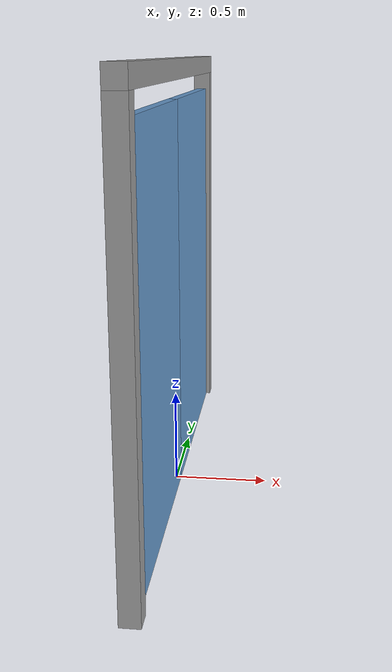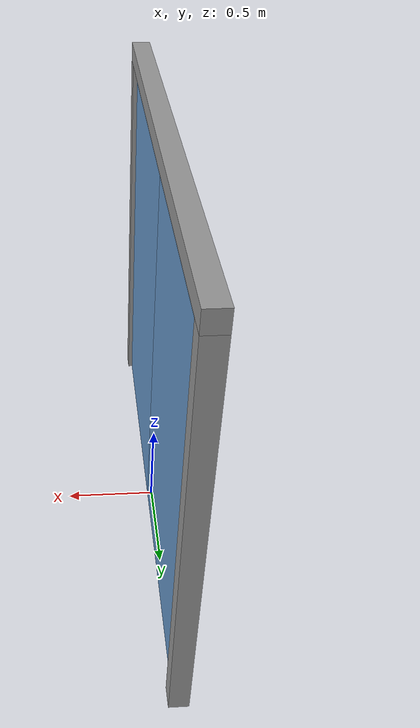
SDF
<?xml version="1.0" ?>
<sdf version="1.8">
  <model name="door_01">
    <static>false</static>

    <!-- Door frame (fixed structure) -->
    <link name="frame">
      <pose>0 0 0 0 0 0</pose>
      <inertial>
        <mass>100.0</mass>
      </inertial>

      <!-- Left pillar -->
      <visual name="left_pillar_visual">
        <pose>0 -1.3 1.1 0 0 0</pose>
        <geometry>
          <box><size>0.1 0.1 2.2</size></box>
        </geometry>
        <material>
          <ambient>0.5 0.5 0.5 1</ambient>
          <diffuse>0.6 0.6 0.6 1</diffuse>
        </material>
      </visual>
      <collision name="left_pillar_collision">
        <pose>0 -1.3 1.1 0 0 0</pose>
        <geometry>
          <box><size>0.1 0.1 2.2</size></box>
        </geometry>
      </collision>

      <!-- Right pillar -->
      <visual name="right_pillar_visual">
        <pose>0 1.3 1.1 0 0 0</pose>
        <geometry>
          <box><size>0.1 0.1 2.2</size></box>
        </geometry>
        <material>
          <ambient>0.5 0.5 0.5 1</ambient>
          <diffuse>0.6 0.6 0.6 1</diffuse>
        </material>
      </visual>
      <collision name="right_pillar_collision">
        <pose>0 1.3 1.1 0 0 0</pose>
        <geometry>
          <box><size>0.1 0.1 2.2</size></box>
        </geometry>
      </collision>

      <!-- Top beam -->
      <visual name="top_beam_visual">
        <pose>0 0 2.25 0 0 0</pose>
        <geometry>
          <box><size>0.1 2.7 0.1</size></box>
        </geometry>
        <material>
          <ambient>0.5 0.5 0.5 1</ambient>
          <diffuse>0.6 0.6 0.6 1</diffuse>
        </material>
      </visual>
      <collision name="top_beam_collision">
        <pose>0 0 2.25 0 0 0</pose>
        <geometry>
          <box><size>0.1 2.7 0.1</size></box>
        </geometry>
      </collision>
    </link>

    <!-- Left door panel (slides in -Y direction to open) -->
    <link name="left_panel">
      <pose>0 -0.625 1.05 0 0 0</pose>
      <inertial>
        <mass>10.0</mass>
        <inertia>
          <ixx>4.98</ixx> <iyy>3.68</iyy> <izz>1.30</izz>
          <ixy>0</ixy> <ixz>0</ixz> <iyz>0</iyz>
        </inertia>
      </inertial>
      <visual name="left_panel_visual">
        <geometry>
          <box><size>0.05 1.25 2.1</size></box>
        </geometry>
        <material>
          <ambient>0.3 0.5 0.7 1</ambient>
          <diffuse>0.4 0.6 0.8 1</diffuse>
        </material>
      </visual>
      <collision name="left_panel_collision">
        <geometry>
          <box><size>0.05 1.25 2.1</size></box>
        </geometry>
      </collision>
    </link>

    <!-- Right door panel (slides in +Y direction to open) -->
    <link name="right_panel">
      <pose>0 0.625 1.05 0 0 0</pose>
      <inertial>
        <mass>10.0</mass>
        <inertia>
          <ixx>4.98</ixx> <iyy>3.68</iyy> <izz>1.30</izz>
          <ixy>0</ixy> <ixz>0</ixz> <iyz>0</iyz>
        </inertia>
      </inertial>
      <visual name="right_panel_visual">
        <geometry>
          <box><size>0.05 1.25 2.1</size></box>
        </geometry>
        <material>
          <ambient>0.3 0.5 0.7 1</ambient>
          <diffuse>0.4 0.6 0.8 1</diffuse>
        </material>
      </visual>
      <collision name="right_panel_collision">
        <geometry>
          <box><size>0.05 1.25 2.1</size></box>
        </geometry>
      </collision>
    </link>

    <!-- Fix frame to world -->
    <joint name="frame_fix" type="fixed">
      <parent>world</parent>
      <child>frame</child>
    </joint>

    <!-- Left panel: prismatic joint sliding along Y axis -->
    <joint name="left_door_joint" type="prismatic">
      <parent>frame</parent>
      <child>left_panel</child>
      <axis>
        <xyz>0 1 0</xyz>
        <limit>
          <lower>-1.25</lower>
          <upper>0</upper>
        </limit>
        <dynamics>
          <damping>10.0</damping>
        </dynamics>
      </axis>
    </joint>

    <!-- Right panel: prismatic joint sliding along Y axis -->
    <joint name="right_door_joint" type="prismatic">
      <parent>frame</parent>
      <child>right_panel</child>
      <axis>
        <xyz>0 1 0</xyz>
        <limit>
          <lower>0</lower>
          <upper>1.25</upper>
        </limit>
        <dynamics>
          <damping>10.0</damping>
        </dynamics>
      </axis>
    </joint>

    <!-- Sliding Door Plugin -->
    <plugin filename="DoorPlugin" name="syncai::DoorPlugin">
      <left_joint>left_door_joint</left_joint>
      <right_joint>right_door_joint</right_joint>
      <slide_distance>1.25</slide_distance>
      <speed>0.5</speed>
    </plugin>

  </model>
</sdf>
